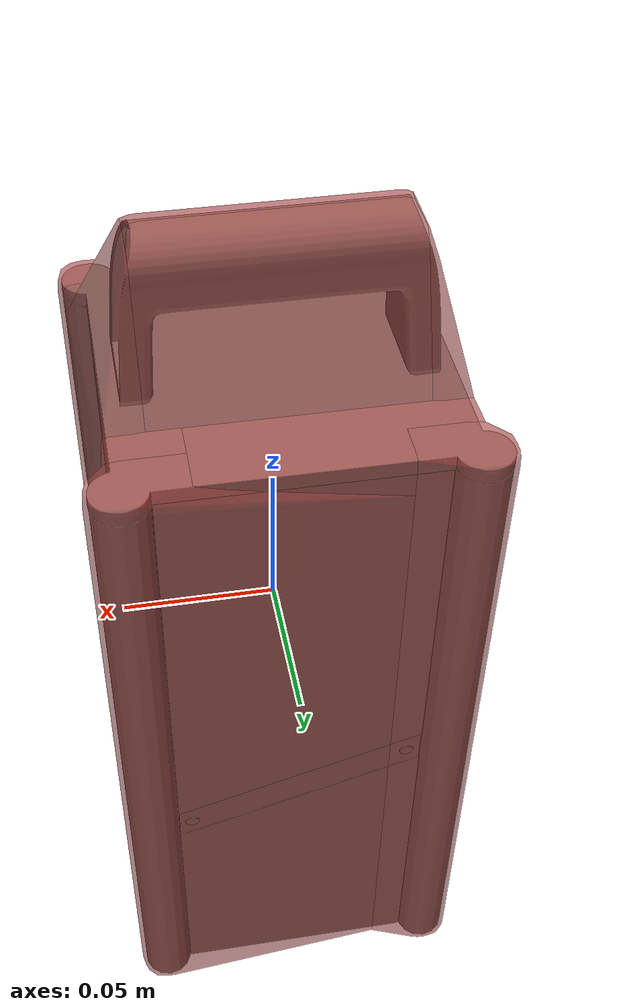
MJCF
<mujoco model="model">
  <option timestep="0.002" gravity="0.0 0.0 -9.81"/>
  <compiler angle="radian"/>
  <asset>
    <mesh file="visual/CheeseGrater008.obj" name="CheeseGrater008_vis"/>
    <mesh file="visual/Prop.obj" name="CheeseGrater008_Prop_vis"/>
    <texture file="visual/T_BC001.png" name="CheeseGrater008_material" type="2d"/>
    <material name="CheeseGrater008_material" rgba="1 1 1 1.0" texture="CheeseGrater008_material" shininess="0.5" specular="0.3"/>
    <texture file="visual/T_BC001.png" name="CheeseGrater008_Prop_material" type="2d"/>
    <material name="CheeseGrater008_Prop_material" rgba="1 1 1 1.0" texture="CheeseGrater008_Prop_material" shininess="2" specular="2"/>
    <mesh file="collision/collision_mesh_collision_0.obj" name="CheeseGrater008_collision_mesh_0"/>
    <mesh file="collision/collision_mesh_collision_1.obj" name="CheeseGrater008_collision_mesh_1"/>
    <mesh file="collision/collision_mesh_collision_2.obj" name="CheeseGrater008_collision_mesh_2"/>
    <mesh file="collision/collision_mesh_collision_3.obj" name="CheeseGrater008_collision_mesh_3"/>
    <mesh file="collision/collision_mesh_collision_4.obj" name="CheeseGrater008_collision_mesh_4"/>
    <mesh file="collision/collision_mesh_collision_5.obj" name="CheeseGrater008_collision_mesh_5"/>
    <mesh file="collision/collision_mesh_collision_6.obj" name="CheeseGrater008_collision_mesh_6"/>
    <mesh file="collision/collision_mesh_collision_7.obj" name="CheeseGrater008_collision_mesh_7"/>
    <mesh file="collision/collision_mesh_collision_8.obj" name="CheeseGrater008_collision_mesh_8"/>
    <mesh file="collision/collision_mesh_collision_9.obj" name="CheeseGrater008_collision_mesh_9"/>
    <mesh file="collision/collision_mesh_collision_10.obj" name="CheeseGrater008_collision_mesh_10"/>
    <mesh file="collision/collision_mesh_collision_11.obj" name="CheeseGrater008_collision_mesh_11"/>
    <mesh file="collision/collision_mesh_collision_12.obj" name="CheeseGrater008_collision_mesh_12"/>
    <mesh file="collision/collision_mesh_collision_13.obj" name="CheeseGrater008_collision_mesh_13"/>
  </asset>
  <default>
    <default class="visual">
      <geom conaffinity="0" contype="0" group="1" type="mesh"/>
    </default>
    <default class="collision">
      <geom group="0" rgba="0.5 0 0 0.5" density="1.0" solref="0.004 1" solimp="0.998 0.998 0.001"/>
    </default>
    <default class="spawn">
      <geom group="0" rgba="1 1 1 0.5" contype="0" conaffinity="0"/>
      <site group="0" rgba="1 1 1 0.5"/>
    </default>
    <default class="region">
      <geom group="1" conaffinity="0" contype="0" rgba="0 1 0 0" mass="0"/>
    </default>
  </default>
  <worldbody>
    <body>
      <body name="object">
        <geom mesh="CheeseGrater008_vis" type="mesh" solimp="0.998 0.998 0.001" solref="0.001 1" friction="0.95 0.3 0.1" class="visual" material="CheeseGrater008_material"/>
        <body name="CheeseGrater008_Prop">
          <geom mesh="CheeseGrater008_Prop_vis" type="mesh" solimp="0.998 0.998 0.001" solref="0.001 1" friction="0.95 0.3 0.1" class="visual" material="CheeseGrater008_Prop_material"/>
        </body>
        <geom class="region" name="reg_bbox" type="box" pos="6.2049999999987115e-06 -2.035000000000925e-06 -7.269000000000025e-05" size="0.058672365000000004 0.058827135 0.14393112000000002"/>
        <geom mesh="CheeseGrater008_collision_mesh_0" type="mesh" class="collision"/>
        <geom mesh="CheeseGrater008_collision_mesh_1" type="mesh" class="collision"/>
        <geom mesh="CheeseGrater008_collision_mesh_2" type="mesh" class="collision"/>
        <geom mesh="CheeseGrater008_collision_mesh_3" type="mesh" class="collision"/>
        <geom mesh="CheeseGrater008_collision_mesh_4" type="mesh" class="collision"/>
        <geom mesh="CheeseGrater008_collision_mesh_5" type="mesh" class="collision"/>
        <geom mesh="CheeseGrater008_collision_mesh_6" type="mesh" class="collision"/>
        <geom mesh="CheeseGrater008_collision_mesh_7" type="mesh" class="collision"/>
        <geom mesh="CheeseGrater008_collision_mesh_8" type="mesh" class="collision"/>
        <geom mesh="CheeseGrater008_collision_mesh_9" type="mesh" class="collision"/>
        <geom mesh="CheeseGrater008_collision_mesh_10" type="mesh" class="collision"/>
        <geom mesh="CheeseGrater008_collision_mesh_11" type="mesh" class="collision"/>
        <geom mesh="CheeseGrater008_collision_mesh_12" type="mesh" class="collision"/>
        <geom mesh="CheeseGrater008_collision_mesh_13" type="mesh" class="collision"/>
      </body>
    </body>
  </worldbody>
  <actuator/>
</mujoco>
